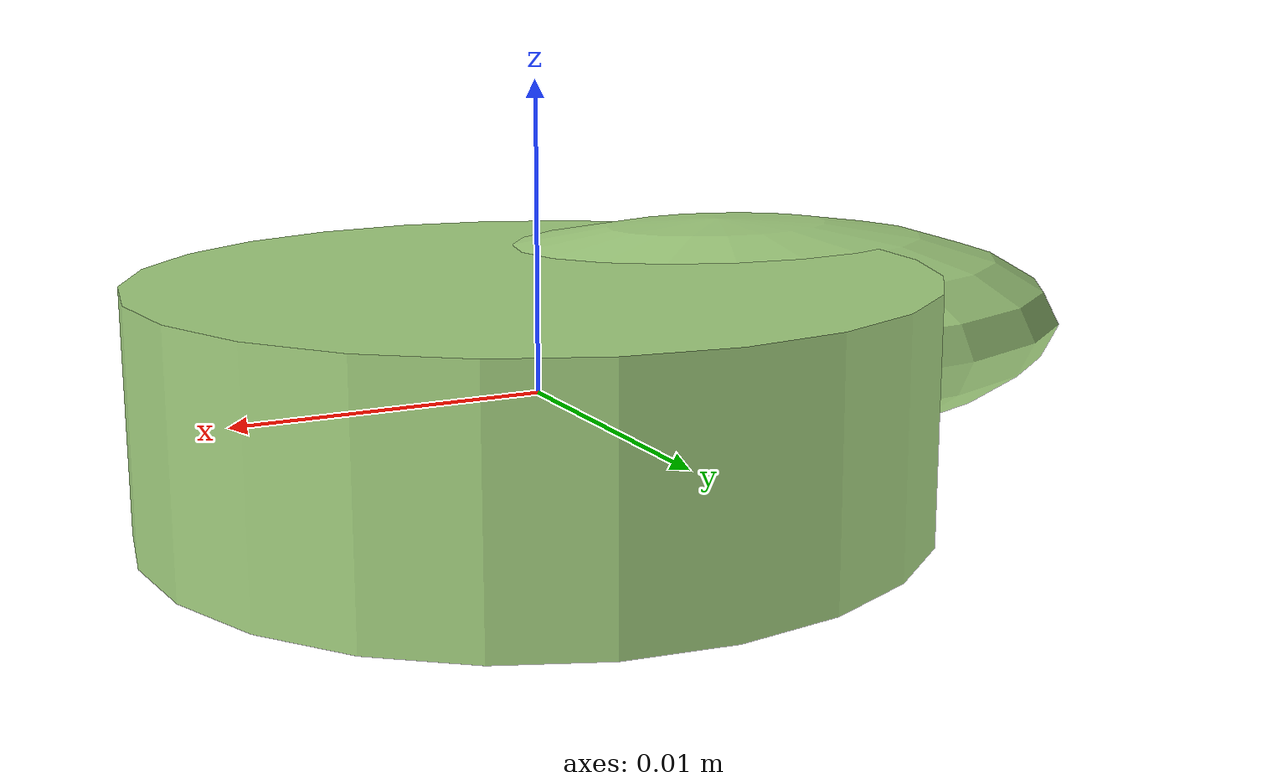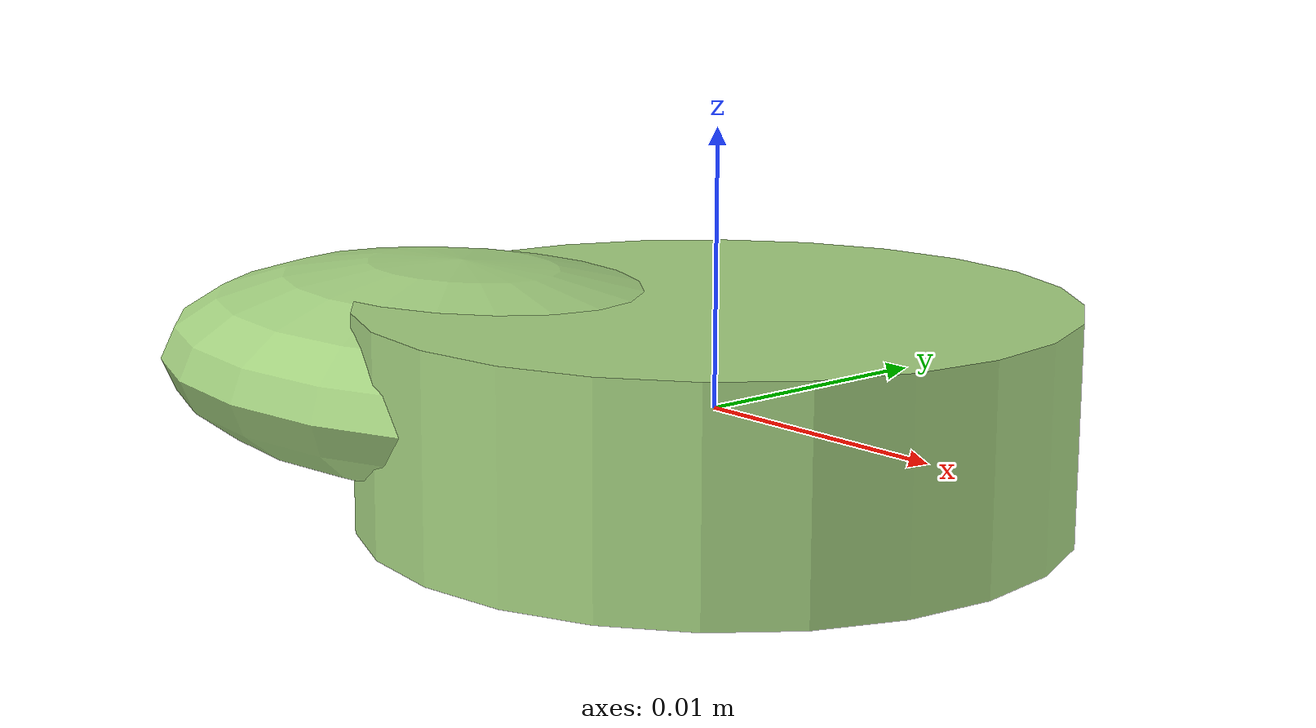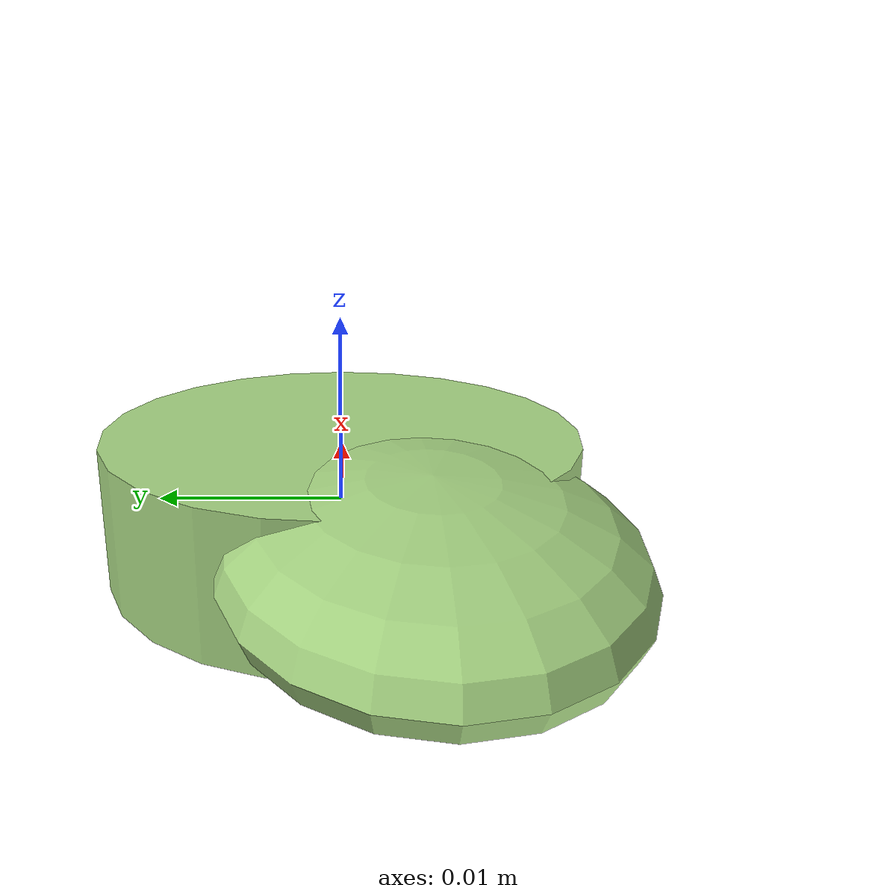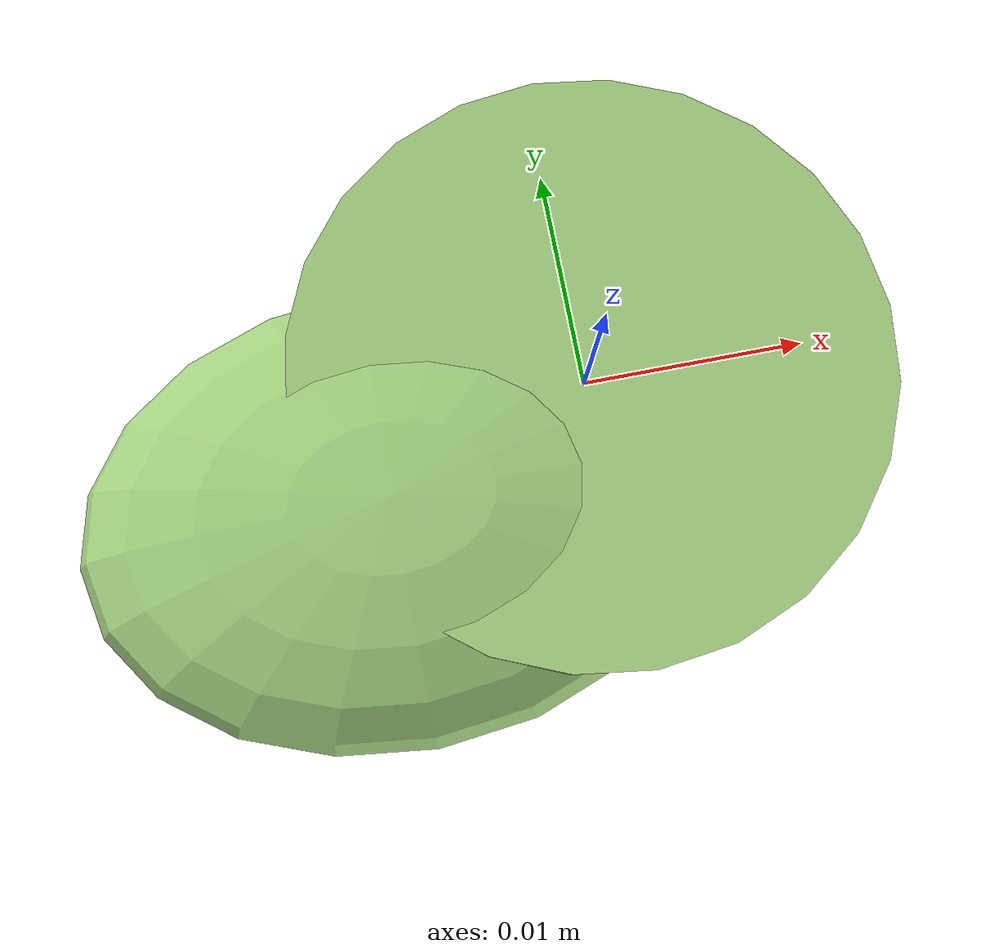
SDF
<?xml version="1.0" ?>
<!-- |    This document was autogenerated by xmacro from data/veggie_template/veggie_base.sdf.xacro  | -->
<!-- |    EDITING THIS FILE BY HAND IS NOT RECOMMENDED                                               | -->
<sdf version="1.8">
	<!-- Parameters -->
	<!-- Base -->
	<!-- Joint 0 -->
	<!-- Link 1 -->
	<!-- Joint 1 -->
	<!-- Link 2 -->
	<!-- Primitives -->
	<!-- All dimensions are half -->
	<!-- Object -->
	<model name="veggie">
		<!-- link0 -->
		<link name="link0">
			<inertial>
				<mass>0.00402538584302063</mass>
				<inertia>
					<ixx>1.8544790438806074e-07</ixx>
					<ixy>0</ixy>
					<ixz>0</ixz>
					<iyy>1.8544790438806074e-07</iyy>
					<iyz>0</iyz>
					<izz>3.2989742897824237e-07</izz>
				</inertia>
			</inertial>
			<visual name="link0_visual">
				<pose>0 0 0 0 0 0</pose>
				<geometry>
					<cylinder>
						<radius>0.012802674555738141</radius>
						<length>0.007817271847366986</length>
					</cylinder>
				</geometry>
				<material>
					<ambient>0.659 0.839 0.514 1</ambient>
					<diffuse>0.659 0.839 0.514 1</diffuse>
					<specular>0 0 0 0</specular>
					<emissive>0 0 0 1</emissive>
				</material>
			</visual>
			<collision name="link0_collision">
				<pose>0 0 0 0 0 0 </pose>
				<geometry>
					<cylinder>
						<radius>0.012802674555738141</radius>
						<length>0.007817271847366986</length>
					</cylinder>
				</geometry>
			</collision>
		</link>
		<!-- link1 -->
		<joint name="joint0" type="fixed">
			<pose relative_to="link0">-0.00908249620496016 -0.0042409059572291775 0.0006962429857530761 0.0 0.0 0.0</pose>
			<parent>link0</parent>
			<child>link1</child>
		</joint>
		<link name="link1">
			<pose relative_to="joint0">0 0 0 0 0 0</pose>
			<inertial>
				<mass>0.0022759139270939685</mass>
				<inertia>
					<ixx>5.311913186673683e-08</ixx>
					<ixy>0</ixy>
					<ixz>0</ixz>
					<iyy>9.339045333983432e-08</iyy>
					<iyz>0</iyz>
					<izz>1.3254126147545475e-07</izz>
				</inertia>
			</inertial>
			<visual name="link1_visual">
				<pose>0 0 0 0 0 0</pose>
				<geometry>
					<ellipsoid>
						<radii>0.013777796578374248 0.01006751317740863 0.003917096163597102</radii>
					</ellipsoid>
				</geometry>
				<material>
					<ambient>0.659 0.839 0.514 1</ambient>
					<diffuse>0.659 0.839 0.514 1</diffuse>
					<specular>0 0 0 0</specular>
					<emissive>0 0 0 1</emissive>
				</material>
			</visual>
			<collision name="link1_collision">
				<pose>0 0 0 0 0 0 </pose>
				<geometry>
					<ellipsoid>
						<radii>0.013777796578374248 0.01006751317740863 0.003917096163597102</radii>
					</ellipsoid>
				</geometry>
			</collision>
		</link>
		<!-- link2 -->
	</model>
</sdf>
